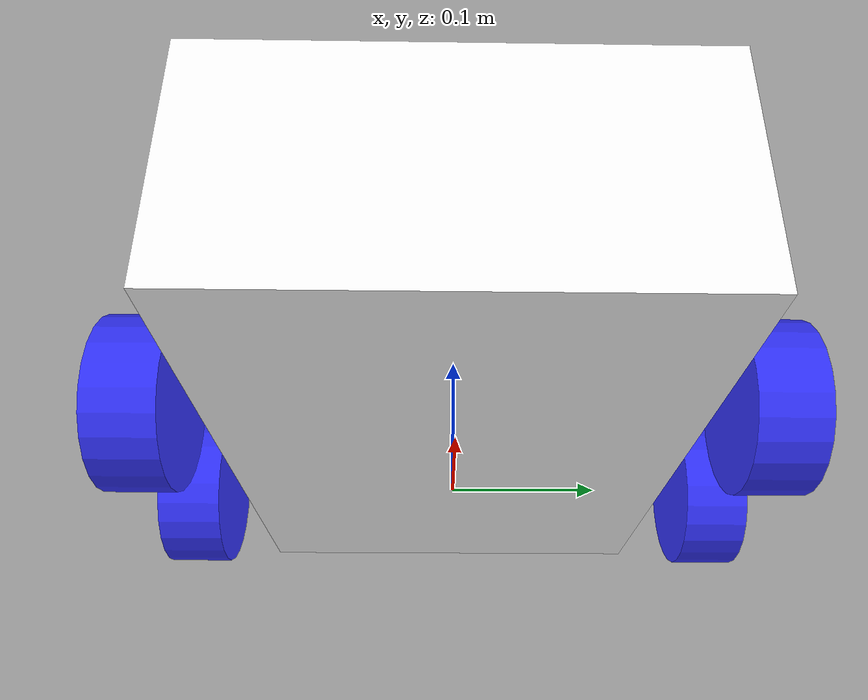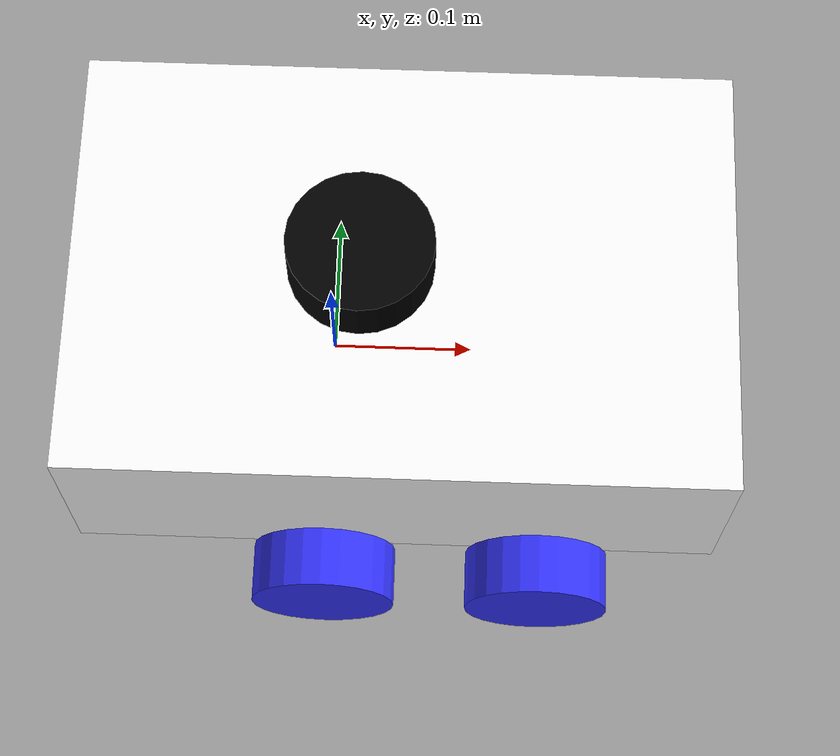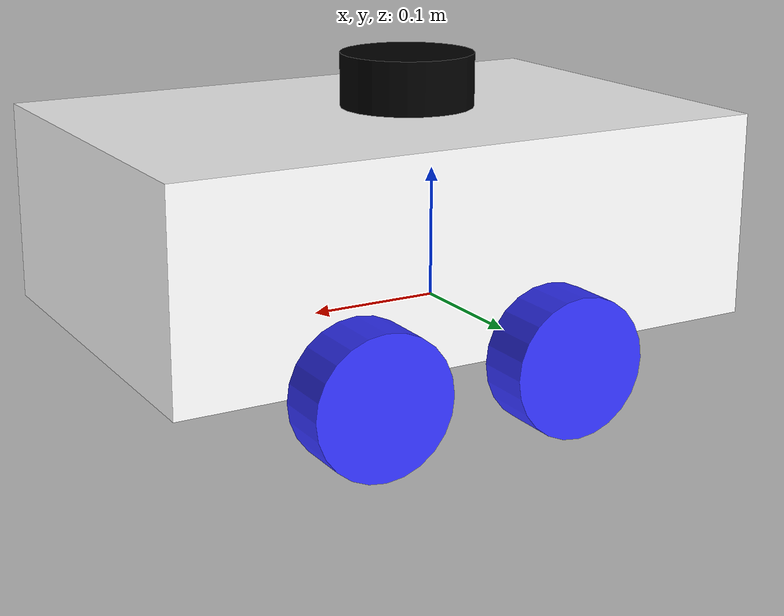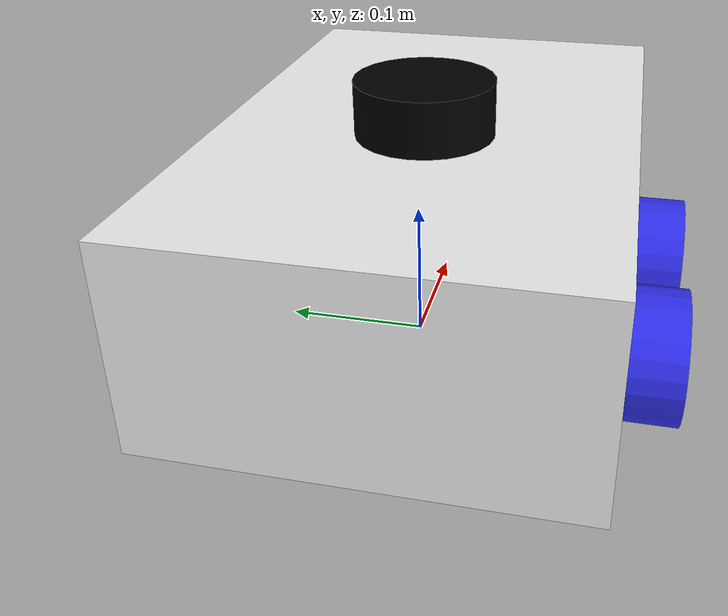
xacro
<?xml version="1.0"?>
<robot xmlns:xacro="http://www.ros.org/wiki/xacro"  name="robot">

    <xacro:include filename="robot_core.xacro" />
    <xacro:include filename="gazebo_control.xacro" />
    <xacro:include filename="lidar.xacro" />
    <xacro:include filename="depth_camera_front.xacro" />
    <xacro:include filename="depth_camera_rear.xacro" />

</robot>

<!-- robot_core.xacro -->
<robot xmlns:xacro="http://www.ros.org/wiki/xacro" >

    <xacro:include filename="inertial_macros.xacro"/>

    <material name="white">
        <color rgba="1 1 1 1" />
    </material>

    <material name="orange">
        <color rgba="1 0.3 0.1 1"/>
    </material>

    <material name="blue">
        <color rgba="0.2 0.2 1 1"/>
    </material>

    <material name="black">
        <color rgba="0 0 0 1"/>
    </material>

    <!-- BASE LINK -->

    <link name="base_link">

    </link>

    <!-- BASE_FOOTPRINT LINK -->

    <joint name="base_footprint_joint" type="fixed">
        <parent link="base_link"/>
        <child link="base_footprint"/>
        <origin xyz="0 0 0" rpy="0 0 0"/>
    </joint>

    <link name="base_footprint">
    </link>

    <!-- CHASSIS LINK -->

    <joint name="chassis_joint" type="fixed">
        <parent link="base_link"/>
        <child link="chassis"/>
        <origin xyz="-0.1 0 0"/>
    </joint>

    <link name="chassis">
        <visual>
            <origin xyz="0.15 0 0.075"/>
            <geometry>
                <box size="0.45 0.3 0.15"/>
            </geometry>
            <material name="white"/>
        </visual>
        <collision>
            <origin xyz="0.15 0 0.075"/>
            <geometry>
                <box size="0.45 0.3 0.15"/>
            </geometry>
        </collision>
        <xacro:inertial_box mass="0.5" x="0.45" y="0.3" z="0.15">
            <origin xyz="0.15 0 0.075" rpy="0 0 0"/>
        </xacro:inertial_box>
    </link>

    <gazebo reference="chassis">
        <material>Gazebo/White</material>
    </gazebo>

    <!-- LEFT BACK WHEEL LINK -->

    <joint name="left_back_wheel_joint" type="continuous">
        <parent link="base_link"/>
        <child link="left_back_wheel"/>
        <origin xyz="0 0.175 0" rpy="-${pi/2} 0 0" />
        <axis xyz="0 0 1"/>
    </joint>

    <link name="left_back_wheel">
        <visual>
            <geometry>
                <cylinder radius="0.05" length="0.04"/>
            </geometry>
            <material name="blue"/>
        </visual>
        <collision>
            <geometry>
                <cylinder radius="0.05" length="0.04"/>
            </geometry>
        </collision>
        <xacro:inertial_cylinder mass="0.1" length="0.04" radius="0.05">
            <origin xyz="0 0 0" rpy="0 0 0"/>
        </xacro:inertial_cylinder>
    </link>

    <gazebo reference="left_back_wheel">
        <material>Gazebo/Blue</material>
    </gazebo>

    <!-- LEFT FRONT WHEEL LINK -->

    <joint name="left_front_wheel_joint" type="continuous">
        <parent link="base_link"/>
        <child link="left_front_wheel"/>
        <origin xyz="0.15 0.175 0" rpy="-${pi/2} 0 0" />
        <axis xyz="0 0 1"/>
    </joint>

    <link name="left_front_wheel">
        <visual>
            <geometry>
                <cylinder radius="0.05" length="0.04"/>
            </geometry>
            <material name="blue"/>
        </visual>
        <collision>
            <geometry>
                <cylinder radius="0.05" length="0.04"/>
            </geometry>
        </collision>
        <xacro:inertial_cylinder mass="0.1" length="0.04" radius="0.05">
            <origin xyz="0 0 0" rpy="0 0 0"/>
        </xacro:inertial_cylinder>
    </link>

    <gazebo reference="left_front_wheel">
        <material>Gazebo/Blue</material>
    </gazebo>

    <!-- RIGHT BACK WHEEL LINK -->

    <joint name="right_back_wheel_joint" type="continuous">
        <parent link="base_link"/>
        <child link="right_back_wheel"/>
        <origin xyz="0 -0.175 0" rpy="${pi/2} 0 0" />
        <axis xyz="0 0 -1"/>
    </joint>

    <link name="right_back_wheel">
        <visual>
            <geometry>
                <cylinder radius="0.05" length="0.04"/>
            </geometry>
            <material name="blue"/>
        </visual>
        <collision>
            <geometry>
                <cylinder radius="0.05" length="0.04"/>
            </geometry>
        </collision>
        <xacro:inertial_cylinder mass="0.1" length="0.04" radius="0.05">
            <origin xyz="0 0 0" rpy="0 0 0"/>
        </xacro:inertial_cylinder>
    </link>

    <gazebo reference="right_back_wheel">
        <material>Gazebo/Blue</material>
    </gazebo>

    <!-- RIGHT FRONT WHEEL LINK -->

    <joint name="right_front_wheel_joint" type="continuous">
        <parent link="base_link"/>
        <child link="right_front_wheel"/>
        <origin xyz="0.15 -0.175 0" rpy="${pi/2} 0 0" />
        <axis xyz="0 0 -1"/>
    </joint>

    <link name="right_front_wheel">
        <visual>
            <geometry>
                <cylinder radius="0.05" length="0.04"/>
            </geometry>
            <material name="blue"/>
        </visual>
        <collision>
            <geometry>
                <cylinder radius="0.05" length="0.04"/>
            </geometry>
        </collision>
        <xacro:inertial_cylinder mass="0.1" length="0.04" radius="0.05">
            <origin xyz="0 0 0" rpy="0 0 0"/>
        </xacro:inertial_cylinder>
    </link>

    <gazebo reference="right_front_wheel">
        <material>Gazebo/Blue</material>
    </gazebo>

</robot>

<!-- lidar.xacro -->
<robot xmlns:xacro="http://www.ros.org/wiki/xacro" >

    <joint name="laser_joint" type="fixed">
        <parent link="chassis"/>
        <child link="laser_frame"/>
        <origin xyz="0.122 0 0.17" rpy="0 0 0"/>
    </joint>

    <link name="laser_frame">
        <visual>
            <geometry>
                <cylinder radius="0.05" length="0.04"/>
            </geometry>
            <material name="black"/>
        </visual>
        <visual>
            <origin xyz="0 0 -0.05"/>
            <geometry>
                <cylinder radius="0.01" length="0.1"/>
            </geometry>
            <material name="black"/>
        </visual>
        <collision>
            <geometry>
                <cylinder radius="0.05" length="0.04"/>
            </geometry>
        </collision>
        <xacro:inertial_cylinder mass="0.1" length="0.04" radius="0.05">
            <origin xyz="0 0 0" rpy="0 0 0"/>
        </xacro:inertial_cylinder>
    </link>

    <gazebo reference="laser_frame">
        <material>Gazebo/Black</material>

        <sensor name="laser" type="ray">
            <pose> 0 0 0 0 0 0 </pose>
            <visualize>false</visualize>
            <update_rate>10</update_rate>
            <ray>
                <scan>
                    <horizontal>
                        <samples>360</samples>
                        <min_angle>-3.14</min_angle>
                        <max_angle>3.14</max_angle>
                    </horizontal>
                </scan>
                <range>
                    <min>0.3</min>
                    <max>12</max>
                </range>
            </ray>

            <!-- Interaction with gazebo -->
            <plugin name="laser_controller" filename="libgazebo_ros_ray_sensor.so">
                <ros>
                    <remapping>~/out:=scan</remapping>
                </ros>
                <output_type>sensor_msgs/LaserScan</output_type>
                <frame_name>laser_frame</frame_name>
            </plugin>
        </sensor>
    </gazebo>

</robot>

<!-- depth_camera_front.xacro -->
<robot xmlns:xacro="http://www.ros.org/wiki/xacro" >

    <joint name="camera_joint" type="fixed">
        <parent link="chassis"/>
        <child link="camera_link"/>
        <origin xyz="0.305 0 0.08" rpy="0 0 0"/>
    </joint>

    <link name="camera_link">
        <visual>
            <geometry>
                <box size="0.010 0.03 0.03"/>
            </geometry>
            <material name="black"/>
        </visual>
    </link>

    <joint name="camera_optical_joint" type="fixed">
        <parent link="camera_link"/>
        <child link="camera_link_optical"/>
        <origin xyz="0 0 0" rpy="${-pi/2} 0 ${-pi/2}"/>
    </joint>

    <link name="camera_link_optical"></link>

    <gazebo reference="camera_link">
        <material>Gazebo/Black</material>

        <sensor name="camera" type="depth">
            <pose> 0 0 0 0 0 0 </pose>
            <visualize>true</visualize>
            <update_rate>10</update_rate>
            <camera>
                <horizontal_fov>1.089</horizontal_fov>
                <image>
                    <format>B8G8R8</format>
                    <width>640</width>
                    <height>480</height>
                </image>
                <clip>
                    <near>0.05</near>
                    <far>5.0</far>
                </clip>
            </camera>
            <plugin name="camera_controller" filename="libgazebo_ros_camera.so">
                <ros>
                    <namespace>camera</namespace>
                </ros>
                <frame_name>camera_link_optical</frame_name>
                <min_depth>0.1</min_depth>
                <max_depth>100.0</max_depth>
            </plugin>
        </sensor>
    </gazebo>

</robot>

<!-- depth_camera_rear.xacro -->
<robot xmlns:xacro="http://www.ros.org/wiki/xacro" >
    <joint name="camera_rear_joint" type="fixed">
        <parent link="chassis"/>
        <child link="camera_rear_link"/>
        <!-- yawed 180 deg to face away from the front camera, off the back face of the chassis -->
        <origin xyz="-0.005 0 0.08" rpy="0 0 ${pi}"/>
    </joint>

    <link name="camera_rear_link">
        <visual>
            <geometry>
                <box size="0.010 0.03 0.03"/>
            </geometry>
            <material name="black"/>
        </visual>
    </link>

    <joint name="camera_rear_optical_joint" type="fixed">
        <parent link="camera_rear_link"/>
        <child link="camera_rear_link_optical"/>
        <origin xyz="0 0 0" rpy="${-pi/2} 0 ${-pi/2}"/>
    </joint>

    <link name="camera_rear_link_optical"></link>

    <gazebo reference="camera_rear_link">
        <material>Gazebo/Black</material>

        <sensor name="camera_rear" type="depth">
            <pose> 0 0 0 0 0 0 </pose>
            <visualize>true</visualize>
            <update_rate>10</update_rate>
            <camera>
                <horizontal_fov>1.089</horizontal_fov>
                <image>
                    <format>B8G8R8</format>
                    <width>640</width>
                    <height>480</height>
                </image>
                <clip>
                    <near>0.05</near>
                    <far>5.0</far>
                </clip>
            </camera>
            <plugin name="camera_rear_controller" filename="libgazebo_ros_camera.so">
                <ros>
                    <namespace>camera_rear</namespace>
                </ros>
                <frame_name>camera_rear_link_optical</frame_name>
                <min_depth>0.1</min_depth>
                <max_depth>100.0</max_depth>
            </plugin>
        </sensor>
    </gazebo>
</robot>
